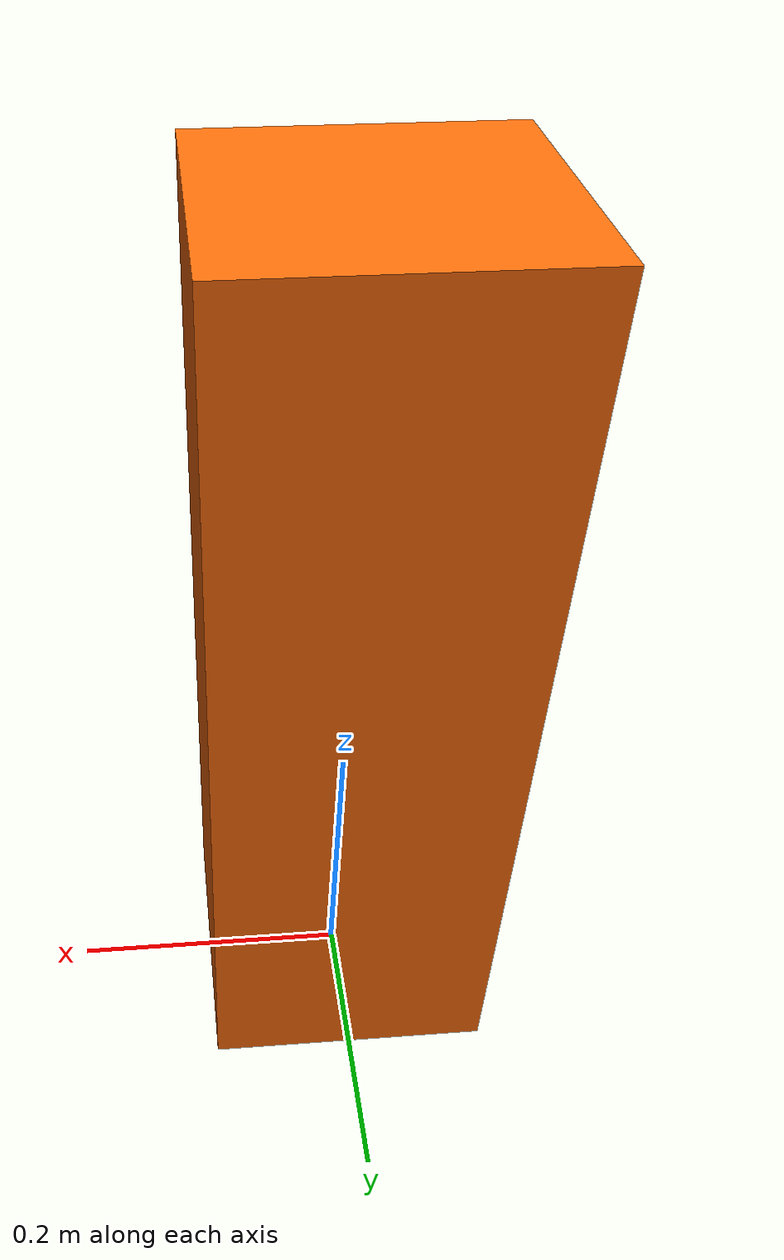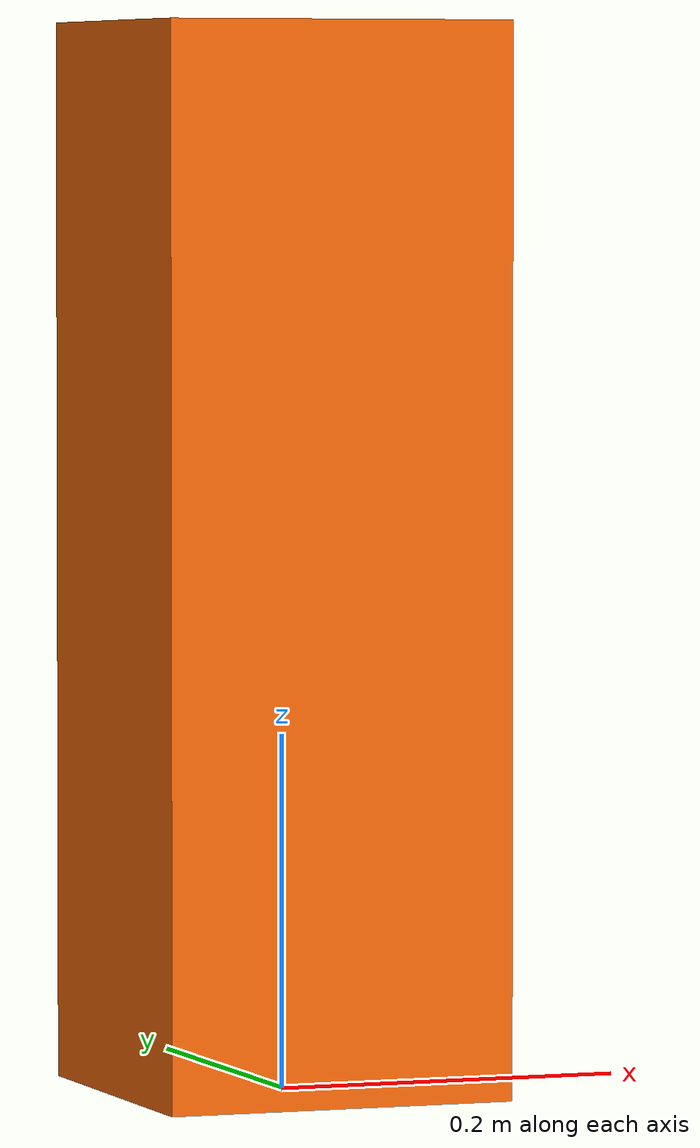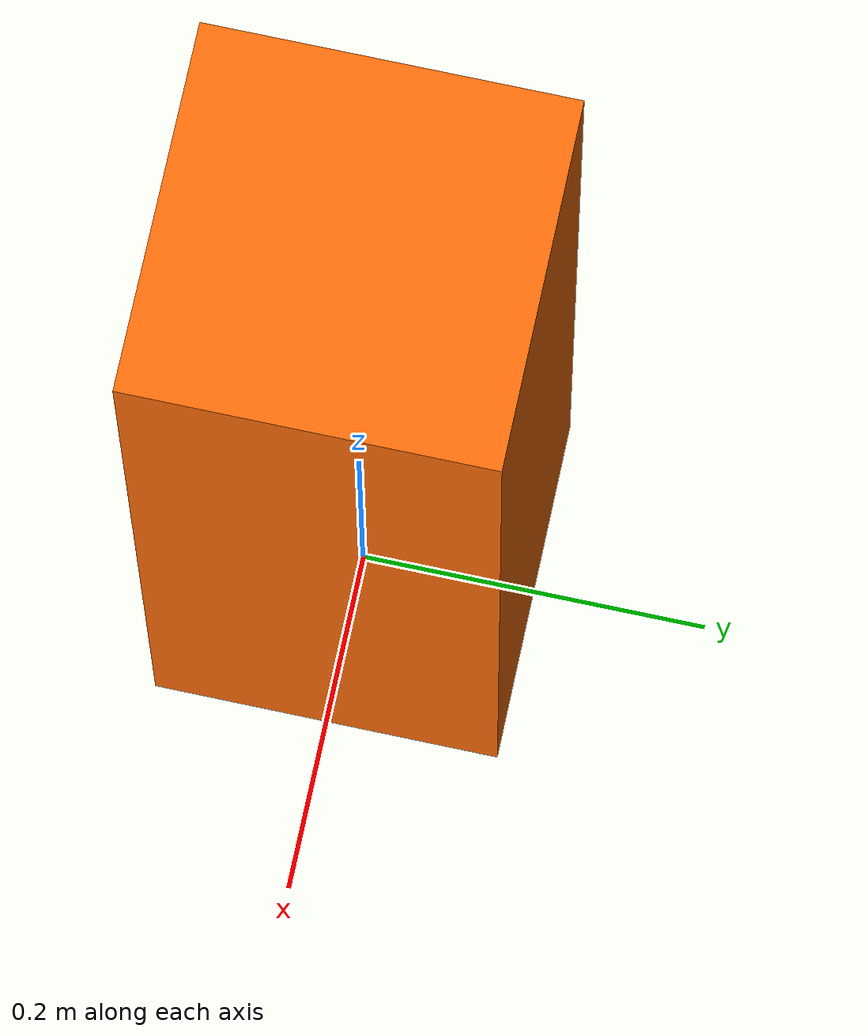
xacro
<?xml version="1.0"?>
<robot xmlns:xacro="http://wiki.ros.org/xacro" name="stand">

  <!-- arm base, orange block/mount for ur5 or ur10 arm -->

  <!-- fix arm base, so that it does not fall -->
  <link name="world"/>
  <joint name="base_fix" type="fixed">
    <parent link="world"/>
    <child link="arm_base"/>
    <origin xyz="0 0 0" rpy="0 0 0"/>
  </joint>

  <link name="arm_base">
    <visual>
      <origin xyz="0 0 0.3" rpy="0 0 0"/>
      <geometry>
        <box size="0.2 0.2 0.6"/>
      </geometry>
      <material name="orange"> <!-- rviz will read this color -->
        <color rgba="${255/255} ${108/255} ${10/255} 1.0"/>
      </material>
    </visual>
    <collision>
      <origin xyz="0 0 0.3" rpy="0 0 0"/>
      <geometry>
        <box size="0.2 0.2 0.6"/>
      </geometry>
    </collision>
    <inertial>
      <origin xyz="0 0 0" rpy="0 0 0"/>
      <mass value="8.2573504e-01"/>
      <inertia ixx="2.2124416e-03" ixy="-1.2294101e-05" ixz="3.4938785e-05"
               iyy="2.1193702e-03" iyz="-5.0120904e-06"
               izz="2.0064271e-03" />
    </inertial>
  </link>
  <gazebo reference="arm_base">
    <material>Gazebo/Orange</material> <!-- gazebo will read this color -->
  </gazebo>

</robot>
